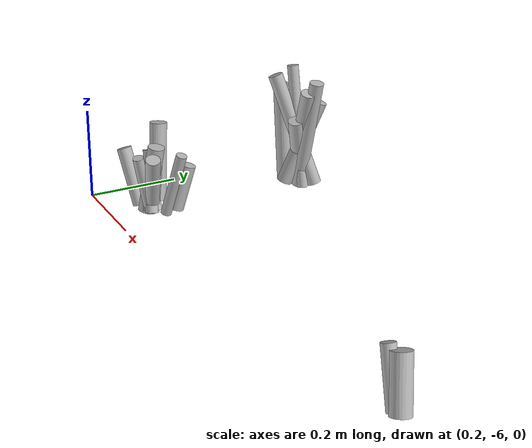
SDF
<sdf version="1.6">
 <world name="default">
  <model name="tussocks">
   <static>true</static>
   <link name="tuft94_0">
    <pose>0.3264 -5.5446 0.1300 0 0.1873 3.2209</pose>
    <visual name="tuft94_0_v">
     <geometry><cylinder><radius>0.0127</radius><length>0.2825</length></cylinder></geometry>
     <material>
      <script>
       <uri>model://bushfire/materials/scripts</uri>
       <uri>model://bushfire/materials/textures</uri>
       <name>Bushfire/Foliage2</name>
      </script>
     </material>
    </visual>
   </link>
   <link name="tuft94_1">
    <pose>0.2690 -5.5486 0.1021 0 0.1100 3.2125</pose>
    <visual name="tuft94_1_v">
     <geometry><cylinder><radius>0.0197</radius><length>0.2220</length></cylinder></geometry>
     <material>
      <script>
       <uri>model://bushfire/materials/scripts</uri>
       <uri>model://bushfire/materials/textures</uri>
       <name>Bushfire/Tussock</name>
      </script>
     </material>
    </visual>
   </link>
   <link name="tuft94_2">
    <pose>0.3150 -5.5377 0.0902 0 0.1370 2.7759</pose>
    <visual name="tuft94_2_v">
     <geometry><cylinder><radius>0.0138</radius><length>0.1961</length></cylinder></geometry>
     <material>
      <script>
       <uri>model://bushfire/materials/scripts</uri>
       <uri>model://bushfire/materials/textures</uri>
       <name>Bushfire/Tussock</name>
      </script>
     </material>
    </visual>
   </link>
   <link name="tuft94_3">
    <pose>0.3344 -5.5384 0.0949 0 0.3703 1.1404</pose>
    <visual name="tuft94_3_v">
     <geometry><cylinder><radius>0.0179</radius><length>0.2064</length></cylinder></geometry>
     <material>
      <script>
       <uri>model://bushfire/materials/scripts</uri>
       <uri>model://bushfire/materials/textures</uri>
       <name>Bushfire/Foliage2</name>
      </script>
     </material>
    </visual>
   </link>
   <link name="tuft94_4">
    <pose>0.3377 -5.5447 0.1102 0 0.3109 6.1897</pose>
    <visual name="tuft94_4_v">
     <geometry><cylinder><radius>0.0168</radius><length>0.2396</length></cylinder></geometry>
     <material>
      <script>
       <uri>model://bushfire/materials/scripts</uri>
       <uri>model://bushfire/materials/textures</uri>
       <name>Bushfire/Foliage2</name>
      </script>
     </material>
    </visual>
   </link>
   <link name="tuft94_5">
    <pose>0.3324 -5.5448 0.0758 0 0.2972 5.4418</pose>
    <visual name="tuft94_5_v">
     <geometry><cylinder><radius>0.0180</radius><length>0.1649</length></cylinder></geometry>
     <material>
      <script>
       <uri>model://bushfire/materials/scripts</uri>
       <uri>model://bushfire/materials/textures</uri>
       <name>Bushfire/Tussock</name>
      </script>
     </material>
    </visual>
   </link>
   <link name="tuft94_6">
    <pose>0.3571 -5.5370 0.1195 0 0.1795 0.2768</pose>
    <visual name="tuft94_6_v">
     <geometry><cylinder><radius>0.0159</radius><length>0.2598</length></cylinder></geometry>
     <material>
      <script>
       <uri>model://bushfire/materials/scripts</uri>
       <uri>model://bushfire/materials/textures</uri>
       <name>Bushfire/Foliage2</name>
      </script>
     </material>
    </visual>
   </link>
   <link name="tuft94_7">
    <pose>0.3250 -5.5509 0.1233 0 0.3709 3.9244</pose>
    <visual name="tuft94_7_v">
     <geometry><cylinder><radius>0.0165</radius><length>0.2681</length></cylinder></geometry>
     <material>
      <script>
       <uri>model://bushfire/materials/scripts</uri>
       <uri>model://bushfire/materials/textures</uri>
       <name>Bushfire/Foliage2</name>
      </script>
     </material>
    </visual>
   </link>
   <link name="tuft106_5">
    <pose>1.1812 -5.8527 0.0485 0 0.3451 2.6827</pose>
    <visual name="tuft106_5_v">
     <geometry><cylinder><radius>0.0194</radius><length>0.1055</length></cylinder></geometry>
     <material>
      <script>
       <uri>model://bushfire/materials/scripts</uri>
       <uri>model://bushfire/materials/textures</uri>
       <name>Bushfire/Foliage2</name>
      </script>
     </material>
    </visual>
   </link>
   <link name="tuft106_7">
    <pose>1.1644 -5.8598 0.0514 0 0.4007 2.9069</pose>
    <visual name="tuft106_7_v">
     <geometry><cylinder><radius>0.0134</radius><length>0.1117</length></cylinder></geometry>
     <material>
      <script>
       <uri>model://bushfire/materials/scripts</uri>
       <uri>model://bushfire/materials/textures</uri>
       <name>Bushfire/Foliage2</name>
      </script>
     </material>
    </visual>
   </link>
   <link name="tuft124_0">
    <pose>0.2615 -5.8638 0.0811 0 0.1546 2.5232</pose>
    <visual name="tuft124_0_v">
     <geometry><cylinder><radius>0.0191</radius><length>0.1762</length></cylinder></geometry>
     <material>
      <script>
       <uri>model://bushfire/materials/scripts</uri>
       <uri>model://bushfire/materials/textures</uri>
       <name>Bushfire/Foliage2</name>
      </script>
     </material>
    </visual>
   </link>
   <link name="tuft124_1">
    <pose>0.3192 -5.9059 0.0632 0 0.3382 2.7746</pose>
    <visual name="tuft124_1_v">
     <geometry><cylinder><radius>0.0150</radius><length>0.1374</length></cylinder></geometry>
     <material>
      <script>
       <uri>model://bushfire/materials/scripts</uri>
       <uri>model://bushfire/materials/textures</uri>
       <name>Bushfire/Foliage2</name>
      </script>
     </material>
    </visual>
   </link>
   <link name="tuft124_2">
    <pose>0.3349 -5.9288 0.0650 0 0.2533 5.2313</pose>
    <visual name="tuft124_2_v">
     <geometry><cylinder><radius>0.0117</radius><length>0.1414</length></cylinder></geometry>
     <material>
      <script>
       <uri>model://bushfire/materials/scripts</uri>
       <uri>model://bushfire/materials/textures</uri>
       <name>Bushfire/Foliage2</name>
      </script>
     </material>
    </visual>
   </link>
   <link name="tuft124_3">
    <pose>0.3245 -5.9103 0.0503 0 0.1674 5.2710</pose>
    <visual name="tuft124_3_v">
     <geometry><cylinder><radius>0.0136</radius><length>0.1093</length></cylinder></geometry>
     <material>
      <script>
       <uri>model://bushfire/materials/scripts</uri>
       <uri>model://bushfire/materials/textures</uri>
       <name>Bushfire/Foliage2</name>
      </script>
     </material>
    </visual>
   </link>
   <link name="tuft124_4">
    <pose>0.3456 -5.8437 0.0482 0 0.2744 1.2222</pose>
    <visual name="tuft124_4_v">
     <geometry><cylinder><radius>0.0164</radius><length>0.1048</length></cylinder></geometry>
     <material>
      <script>
       <uri>model://bushfire/materials/scripts</uri>
       <uri>model://bushfire/materials/textures</uri>
       <name>Bushfire/Foliage2</name>
      </script>
     </material>
    </visual>
   </link>
   <link name="tuft124_5">
    <pose>0.3130 -5.8996 0.0549 0 0.3367 2.4678</pose>
    <visual name="tuft124_5_v">
     <geometry><cylinder><radius>0.0182</radius><length>0.1194</length></cylinder></geometry>
     <material>
      <script>
       <uri>model://bushfire/materials/scripts</uri>
       <uri>model://bushfire/materials/textures</uri>
       <name>Bushfire/Foliage2</name>
      </script>
     </material>
    </visual>
   </link>
   <link name="tuft124_6">
    <pose>0.2671 -5.9288 0.0597 0 0.3534 3.5140</pose>
    <visual name="tuft124_6_v">
     <geometry><cylinder><radius>0.0161</radius><length>0.1297</length></cylinder></geometry>
     <material>
      <script>
       <uri>model://bushfire/materials/scripts</uri>
       <uri>model://bushfire/materials/textures</uri>
       <name>Bushfire/Tussock</name>
      </script>
     </material>
    </visual>
   </link>
   <link name="tuft124_7">
    <pose>0.3230 -5.9067 0.0703 0 0.1799 0.8318</pose>
    <visual name="tuft124_7_v">
     <geometry><cylinder><radius>0.0182</radius><length>0.1529</length></cylinder></geometry>
     <material>
      <script>
       <uri>model://bushfire/materials/scripts</uri>
       <uri>model://bushfire/materials/textures</uri>
       <name>Bushfire/Foliage2</name>
      </script>
     </material>
    </visual>
   </link>
   <link name="tuft124_8">
    <pose>0.3172 -5.9089 0.0481 0 0.4105 3.4506</pose>
    <visual name="tuft124_8_v">
     <geometry><cylinder><radius>0.0143</radius><length>0.1046</length></cylinder></geometry>
     <material>
      <script>
       <uri>model://bushfire/materials/scripts</uri>
       <uri>model://bushfire/materials/textures</uri>
       <name>Bushfire/Tussock</name>
      </script>
     </material>
    </visual>
   </link>
   <link name="tuft124_9">
    <pose>0.3527 -5.9165 0.0695 0 0.3997 5.9819</pose>
    <visual name="tuft124_9_v">
     <geometry><cylinder><radius>0.0159</radius><length>0.1511</length></cylinder></geometry>
     <material>
      <script>
       <uri>model://bushfire/materials/scripts</uri>
       <uri>model://bushfire/materials/textures</uri>
       <name>Bushfire/Tussock</name>
      </script>
     </material>
    </visual>
   </link>
   <link name="tuft124_10">
    <pose>0.3693 -5.8743 0.0683 0 0.2876 0.6124</pose>
    <visual name="tuft124_10_v">
     <geometry><cylinder><radius>0.0121</radius><length>0.1485</length></cylinder></geometry>
     <material>
      <script>
       <uri>model://bushfire/materials/scripts</uri>
       <uri>model://bushfire/materials/textures</uri>
       <name>Bushfire/Tussock</name>
      </script>
     </material>
    </visual>
   </link>
   <link name="tuft124_11">
    <pose>0.3315 -5.9095 0.0519 0 0.1247 6.0313</pose>
    <visual name="tuft124_11_v">
     <geometry><cylinder><radius>0.0125</radius><length>0.1128</length></cylinder></geometry>
     <material>
      <script>
       <uri>model://bushfire/materials/scripts</uri>
       <uri>model://bushfire/materials/textures</uri>
       <name>Bushfire/Tussock</name>
      </script>
     </material>
    </visual>
   </link>
  </model>
 </world>
</sdf>
